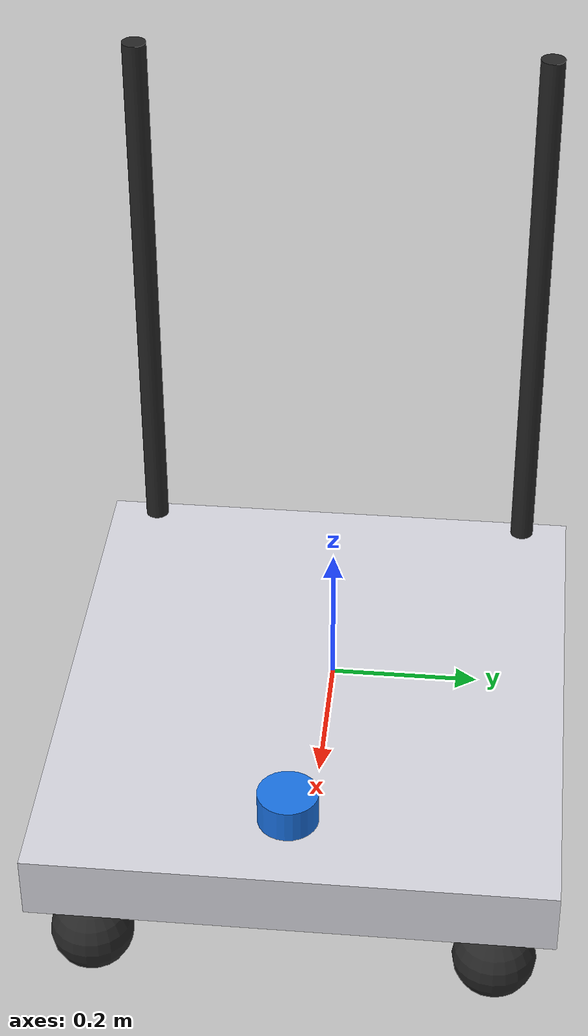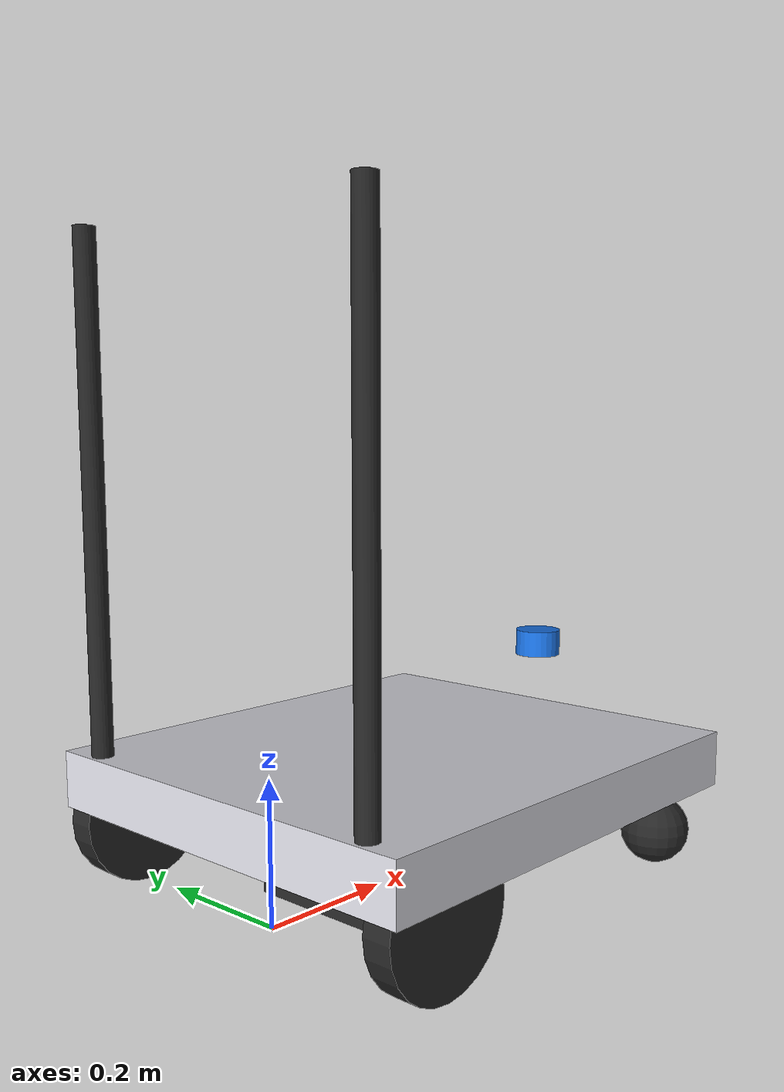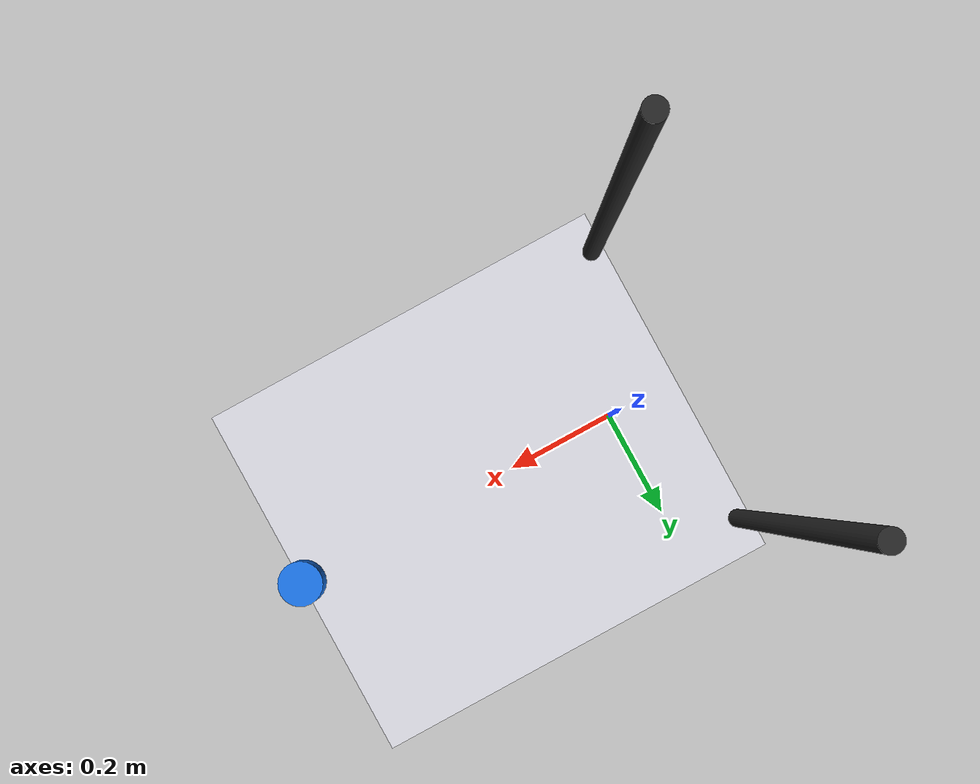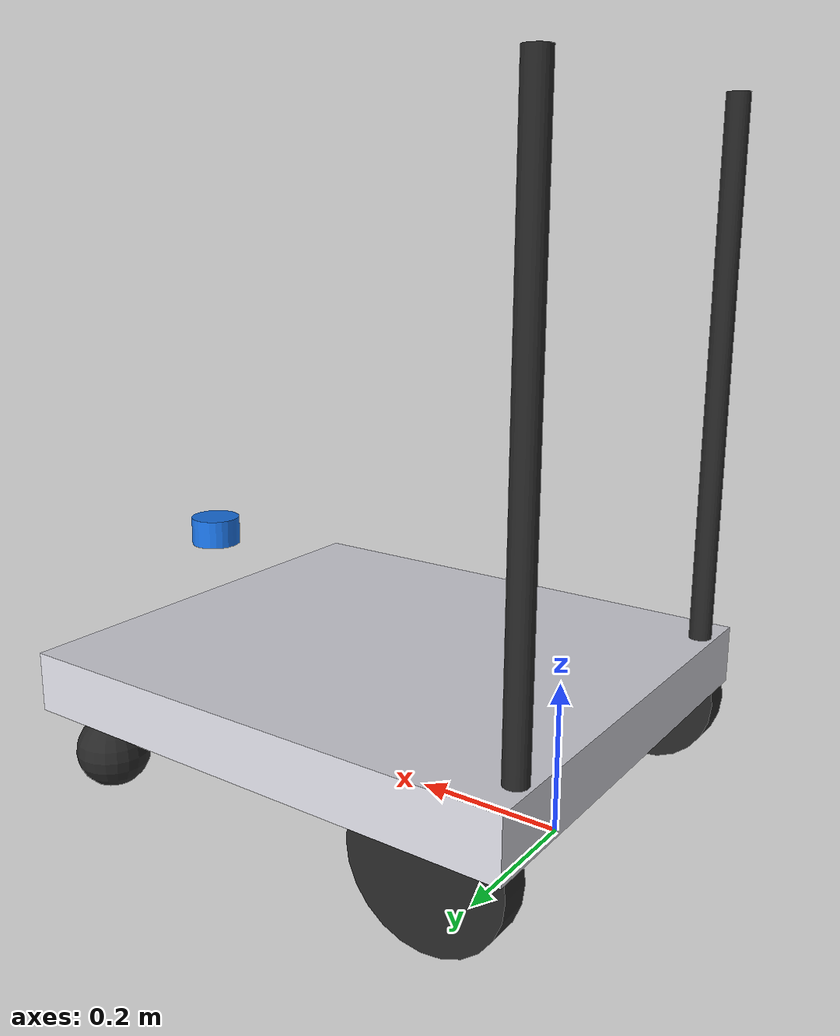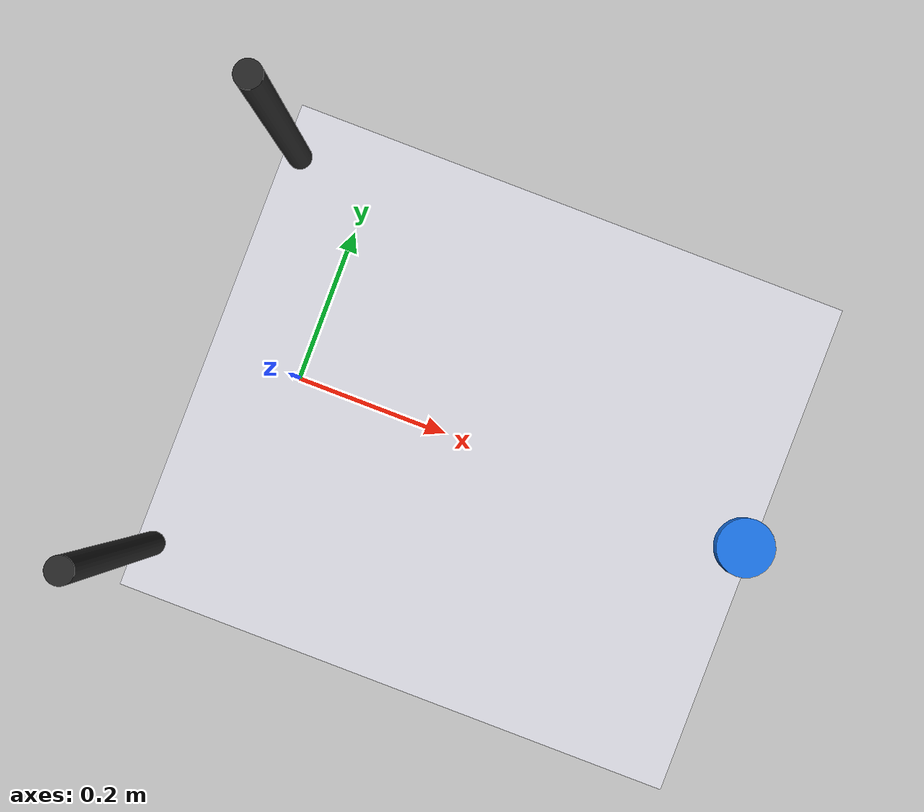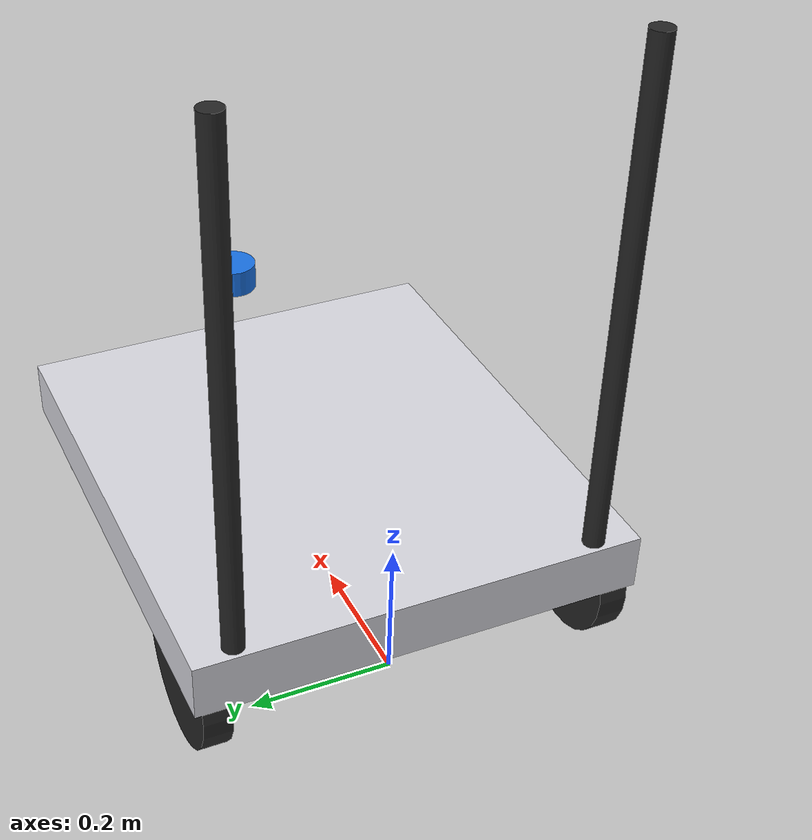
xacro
<?xml version="1.0"?>
<!-- GENERATED by tools/generate_models.py from config/robot_walker.yaml. Do not edit; run `make generate`. -->
<robot name="walker" xmlns:xacro="http://www.ros.org/wiki/xacro">
  <xacro:arg name="backend" default="mujoco"/>  <!-- mujoco | mujoco_hil | real -->
  <xacro:arg name="device" default="/dev/eyesteer_mcu"/>
  <xacro:property name="wheel_radius" value="0.1"/>
  <xacro:property name="wheel_width" value="0.04"/>
  <xacro:property name="wheel_separation" value="0.56"/>
  <xacro:property name="wheel_x" value="0"/>
  <xacro:property name="wheel_mass" value="1.2"/>
  <xacro:property name="base_mass" value="18"/>
  <xacro:property name="base_height" value="0.08"/>
  <xacro:property name="base_z_center" value="0.06"/>
  <xacro:property name="base_length" value="0.7"/>
  <xacro:property name="base_width" value="0.62"/>
  <xacro:property name="base_x_center" value="0.25"/>
  <xacro:property name="lidar_x" value="0.58"/>
  <xacro:property name="lidar_y" value="0"/>
  <xacro:property name="lidar_yaw" value="0"/>
  <xacro:property name="lidar_z" value="0.2"/>
  <xacro:property name="lidar_radius" value="0.035"/>
  <xacro:property name="lidar_height" value="0.04"/>
  <xacro:property name="imu_x" value="0.2"/>
  <xacro:property name="imu_y" value="0"/>
  <xacro:property name="imu_z" value="0.1"/>
  <xacro:property name="camera_x" value="0.6"/>
  <xacro:property name="camera_y" value="0"/>
  <xacro:property name="camera_z" value="0.35"/>
  <xacro:property name="handle_x" value="-0.08"/>
  <xacro:property name="handle_y" value="0.25"/>
  <xacro:property name="handle_z" value="0.8"/>
  <material name="body"><color rgba="0.85 0.85 0.88 1"/></material>
  <material name="dark"><color rgba="0.15 0.15 0.15 1"/></material>
  <material name="accent"><color rgba="0.1 0.45 0.9 1"/></material>
  <link name="base_footprint"/>
  <joint name="base_joint" type="fixed"><parent link="base_footprint"/><child link="base_link"/><origin xyz="0 0 ${wheel_radius}" rpy="0 0 0"/></joint>
  <link name="base_link">
    <visual><origin xyz="${base_x_center} 0 ${base_z_center}" rpy="0 0 0"/><geometry><box size="${base_length} ${base_width} ${base_height}"/></geometry><material name="body"/></visual>
    <collision><origin xyz="${base_x_center} 0 ${base_z_center}" rpy="0 0 0"/><geometry><box size="${base_length} ${base_width} ${base_height}"/></geometry></collision>
    <visual><origin xyz="-0.08 0.25 0.43" rpy="0 0 0"/><geometry><cylinder radius="0.015" length="0.74"/></geometry><material name="dark"/></visual>
    <visual><origin xyz="-0.08 -0.25 0.43" rpy="0 0 0"/><geometry><cylinder radius="0.015" length="0.74"/></geometry><material name="dark"/></visual>
    <visual><origin xyz="0.2 0 -0.04" rpy="0 0 0"/><geometry><box size="0.25 0.2 0.12"/></geometry><material name="dark"/></visual>
    <inertial><origin xyz="0.25 0 0.06" rpy="0 0 0"/><mass value="18"/><inertia ixx="5.862000e-01" ixy="0" ixz="0" iyy="7.446000e-01" iyz="0" izz="1.311600e+00"/></inertial>
  </link>
  <link name="left_wheel_link">
    <visual><origin xyz="0 0 0" rpy="-1.570796 0 0"/><geometry><cylinder radius="${wheel_radius}" length="${wheel_width}"/></geometry><material name="dark"/></visual>
    <collision><origin xyz="0 0 0" rpy="-1.570796 0 0"/><geometry><cylinder radius="${wheel_radius}" length="${wheel_width}"/></geometry></collision>
    <inertial><origin xyz="0 0 0" rpy="0 0 0"/><mass value="1.2"/><inertia ixx="3.160000e-03" ixy="0" ixz="0" iyy="6.000000e-03" iyz="0" izz="3.160000e-03"/></inertial>
  </link>
  <joint name="left_wheel_joint" type="continuous"><parent link="base_link"/><child link="left_wheel_link"/><origin xyz="${wheel_x} ${0.5*wheel_separation} 0" rpy="0 0 0"/><axis xyz="0 1 0"/></joint>
  <link name="right_wheel_link">
    <visual><origin xyz="0 0 0" rpy="-1.570796 0 0"/><geometry><cylinder radius="${wheel_radius}" length="${wheel_width}"/></geometry><material name="dark"/></visual>
    <collision><origin xyz="0 0 0" rpy="-1.570796 0 0"/><geometry><cylinder radius="${wheel_radius}" length="${wheel_width}"/></geometry></collision>
    <inertial><origin xyz="0 0 0" rpy="0 0 0"/><mass value="1.2"/><inertia ixx="3.160000e-03" ixy="0" ixz="0" iyy="6.000000e-03" iyz="0" izz="3.160000e-03"/></inertial>
  </link>
  <joint name="right_wheel_joint" type="continuous"><parent link="base_link"/><child link="right_wheel_link"/><origin xyz="${wheel_x} ${-0.5*wheel_separation} 0" rpy="0 0 0"/><axis xyz="0 1 0"/></joint>
  <link name="front_left_caster_link">
    <visual><geometry><sphere radius="0.05"/></geometry><material name="dark"/></visual>
    <collision><geometry><sphere radius="0.05"/></geometry></collision>
    <inertial><origin xyz="0 0 0" rpy="0 0 0"/><mass value="0.05"/><inertia ixx="5.000000e-05" ixy="0" ixz="0" iyy="5.000000e-05" iyz="0" izz="5.000000e-05"/></inertial>
  </link>
  <joint name="front_left_caster_joint" type="fixed"><parent link="base_link"/><child link="front_left_caster_link"/><origin xyz="0.55 0.24 -0.05" rpy="0 0 0"/></joint>
  <link name="front_right_caster_link">
    <visual><geometry><sphere radius="0.05"/></geometry><material name="dark"/></visual>
    <collision><geometry><sphere radius="0.05"/></geometry></collision>
    <inertial><origin xyz="0 0 0" rpy="0 0 0"/><mass value="0.05"/><inertia ixx="5.000000e-05" ixy="0" ixz="0" iyy="5.000000e-05" iyz="0" izz="5.000000e-05"/></inertial>
  </link>
  <joint name="front_right_caster_joint" type="fixed"><parent link="base_link"/><child link="front_right_caster_link"/><origin xyz="0.55 -0.24 -0.05" rpy="0 0 0"/></joint>
  <link name="laser_frame">
    <visual><geometry><cylinder radius="${lidar_radius}" length="${lidar_height}"/></geometry><material name="accent"/></visual>
    <collision><geometry><cylinder radius="${lidar_radius}" length="${lidar_height}"/></geometry></collision>
    <inertial><origin xyz="0 0 0" rpy="0 0 0"/><mass value="0.17"/><inertia ixx="7.472917e-05" ixy="0" ixz="0" iyy="7.472917e-05" iyz="0" izz="1.041250e-04"/></inertial>
  </link>
  <joint name="laser_joint" type="fixed"><parent link="base_link"/><child link="laser_frame"/><origin xyz="${lidar_x} ${lidar_y} ${lidar_z}" rpy="0 0 ${lidar_yaw}"/></joint>
  <link name="imu_link"/>
  <joint name="imu_joint" type="fixed"><parent link="base_link"/><child link="imu_link"/><origin xyz="${imu_x} ${imu_y} ${imu_z}" rpy="0 0 0"/></joint>
  <link name="camera_link"/>
  <joint name="camera_joint" type="fixed"><parent link="base_link"/><child link="camera_link"/><origin xyz="${camera_x} ${camera_y} ${camera_z}" rpy="0 0 0"/></joint>
  <link name="camera_optical_frame"/>
  <joint name="camera_optical_joint" type="fixed"><parent link="camera_link"/><child link="camera_optical_frame"/><origin xyz="0 0 0" rpy="-1.570796 0 -1.570796"/></joint>
  <link name="handle_left_ft"/>
  <joint name="handle_left_ft_joint" type="fixed"><parent link="base_link"/><child link="handle_left_ft"/><origin xyz="${handle_x} ${handle_y} ${handle_z}" rpy="0 0 0"/></joint>
  <link name="grip_left"/>
  <joint name="grip_left_joint" type="fixed"><parent link="handle_left_ft"/><child link="grip_left"/><origin xyz="-0.03 0 0.02" rpy="0 0 0"/></joint>
  <link name="handle_right_ft"/>
  <joint name="handle_right_ft_joint" type="fixed"><parent link="base_link"/><child link="handle_right_ft"/><origin xyz="${handle_x} ${-1*handle_y} ${handle_z}" rpy="0 0 0"/></joint>
  <link name="grip_right"/>
  <joint name="grip_right_joint" type="fixed"><parent link="handle_right_ft"/><child link="grip_right"/><origin xyz="-0.03 0 0.02" rpy="0 0 0"/></joint>
  <xacro:if value="${'$(arg backend)' in ['real', 'mujoco_hil']}">
  <ros2_control name="walker_system" type="system">
    <hardware>
      <plugin>diffdrive_arduino/DiffDriveArduinoHardware</plugin>
      <param name="left_wheel_name">left_wheel_joint</param>
      <param name="right_wheel_name">right_wheel_joint</param>
      <param name="loop_rate">50</param>
      <param name="device">$(arg device)</param>
      <param name="baud_rate">57600</param>
      <param name="timeout_ms">1000</param>
      <param name="enc_counts_per_rev">1320</param>
      <param name="pid_p">30</param>
      <param name="pid_d">10</param>
      <param name="pid_i">0</param>
      <param name="pid_o">50</param>
    </hardware>
    <joint name="left_wheel_joint">
      <command_interface name="velocity"><param name="min">-6</param><param name="max">6</param></command_interface>
      <state_interface name="position"/>
      <state_interface name="velocity"/>
    </joint>
    <joint name="right_wheel_joint">
      <command_interface name="velocity"><param name="min">-6</param><param name="max">6</param></command_interface>
      <state_interface name="position"/>
      <state_interface name="velocity"/>
    </joint>
  </ros2_control>
  </xacro:if>
</robot>
